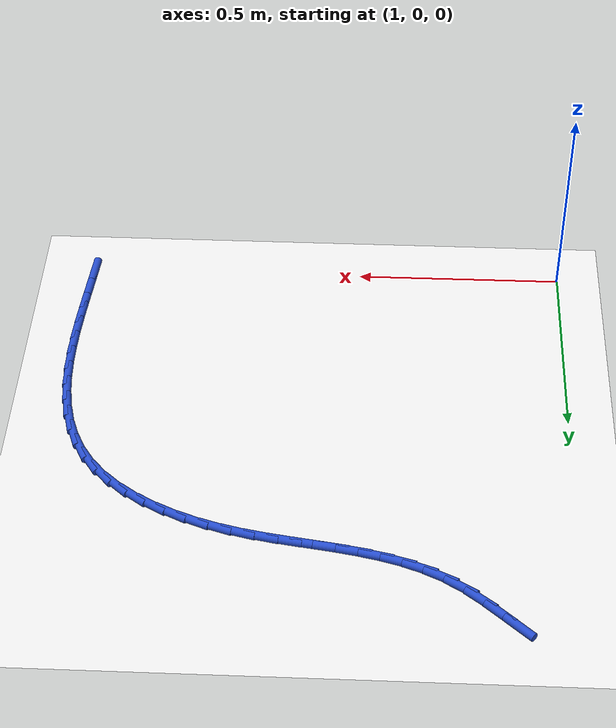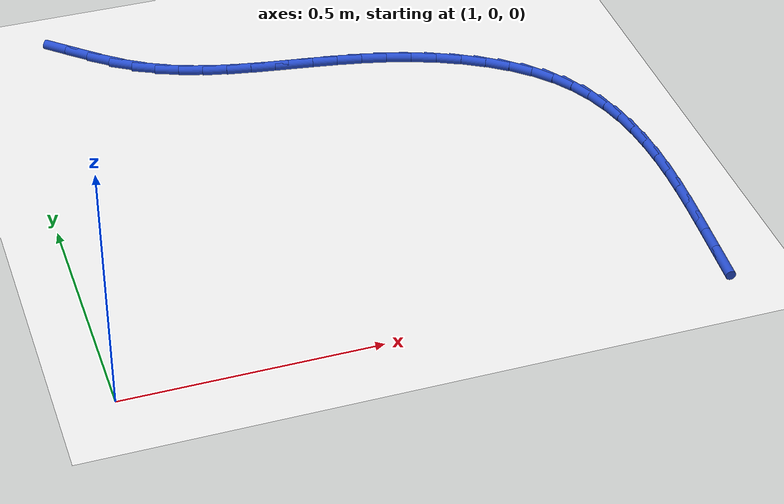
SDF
<sdf version="1.6">
 <world name="default">
  <model name="ground_plane">
   <static>1</static>
   <link name="link">
    <collision name="collision">
     <geometry><plane><normal>0 0 1</normal><size>100 100</size></plane></geometry>
     <surface><friction><ode><mu>100</mu><mu2>50</mu2></ode></friction></surface>
    </collision>
    <visual name="visual">
     <cast_shadows>0</cast_shadows>
     <geometry><plane><normal>0 0 1</normal><size>100 100</size></plane></geometry>
     <material>
      <script><uri>file://media/materials/scripts/gazebo.material</uri><name>Gazebo/WhiteGlow</name></script>
     </material>
    </visual>
   </link>
  </model>
  <model name="line">
   <link name="link_36">
    <pose>1.1379352854605909 1.1097232866844626 0.01 0 1.57 -0.7317335381845154</pose>
    <collision name="collision">
     <geometry><cylinder><radius>0.01</radius><length>0.08</length></cylinder></geometry>
    </collision>
    <visual name="visual">
     <material>
      <script><name>Gazebo/Blue</name><uri>file://media/materials/scripts/gazebo.material</uri></script>
     </material>
     <geometry><cylinder><radius>0.01</radius><length>0.08</length></cylinder></geometry>
    </visual>
   </link>
   <link name="link_37">
    <pose>1.1775645457907205 1.0741344564082316 0.01 0 1.57 -0.7213964662566799</pose>
    <collision name="collision">
     <geometry><cylinder><radius>0.01</radius><length>0.08</length></cylinder></geometry>
    </collision>
    <visual name="visual">
     <material>
      <script><name>Gazebo/Blue</name><uri>file://media/materials/scripts/gazebo.material</uri></script>
     </material>
     <geometry><cylinder><radius>0.01</radius><length>0.08</length></cylinder></geometry>
    </visual>
   </link>
   <link name="link_38">
    <pose>1.2176580591915096 1.0388705424169773 0.01 0 1.57 -0.6620385328162225</pose>
    <collision name="collision">
     <geometry><cylinder><radius>0.01</radius><length>0.08</length></cylinder></geometry>
    </collision>
    <visual name="visual">
     <material>
      <script><name>Gazebo/Blue</name><uri>file://media/materials/scripts/gazebo.material</uri></script>
     </material>
     <geometry><cylinder><radius>0.01</radius><length>0.08</length></cylinder></geometry>
    </visual>
   </link>
   <link name="link_39">
    <pose>1.2589790003060026 1.0066659713873365 0.01 0 1.57 -0.555360376780421</pose>
    <collision name="collision">
     <geometry><cylinder><radius>0.01</radius><length>0.08</length></cylinder></geometry>
    </collision>
    <visual name="visual">
     <material>
      <script><name>Gazebo/Blue</name><uri>file://media/materials/scripts/gazebo.material</uri></script>
     </material>
     <geometry><cylinder><radius>0.01</radius><length>0.08</length></cylinder></geometry>
    </visual>
   </link>
   <link name="link_40">
    <pose>1.302181574808645 0.979858560709502 0.01 0 1.57 -0.44366950882743483</pose>
    <collision name="collision">
     <geometry><cylinder><radius>0.01</radius><length>0.08</length></cylinder></geometry>
    </collision>
    <visual name="visual">
     <material>
      <script><name>Gazebo/Blue</name><uri>file://media/materials/scripts/gazebo.material</uri></script>
     </material>
     <geometry><cylinder><radius>0.01</radius><length>0.08</length></cylinder></geometry>
    </visual>
   </link>
   <link name="link_41">
    <pose>1.3472721725349095 0.9584283025969158 0.01 0 1.57 -0.3476788431000535</pose>
    <collision name="collision">
     <geometry><cylinder><radius>0.01</radius><length>0.08</length></cylinder></geometry>
    </collision>
    <visual name="visual">
     <material>
      <script><name>Gazebo/Blue</name><uri>file://media/materials/scripts/gazebo.material</uri></script>
     </material>
     <geometry><cylinder><radius>0.01</radius><length>0.08</length></cylinder></geometry>
    </visual>
   </link>
   <link name="link_42">
    <pose>1.3940187388656822 0.9414873340726139 0.01 0 1.57 -0.2701817047731345</pose>
    <collision name="collision">
     <geometry><cylinder><radius>0.01</radius><length>0.08</length></cylinder></geometry>
    </collision>
    <visual name="visual">
     <material>
      <script><name>Gazebo/Blue</name><uri>file://media/materials/scripts/gazebo.material</uri></script>
     </material>
     <geometry><cylinder><radius>0.01</radius><length>0.08</length></cylinder></geometry>
    </visual>
   </link>
   <link name="link_43">
    <pose>1.4421888479101332 0.9281464408592379 0.01 0 1.57 -0.21211245688839725</pose>
    <collision name="collision">
     <geometry><cylinder><radius>0.01</radius><length>0.08</length></cylinder></geometry>
    </collision>
    <visual name="visual">
     <material>
      <script><name>Gazebo/Blue</name><uri>file://media/materials/scripts/gazebo.material</uri></script>
     </material>
     <geometry><cylinder><radius>0.01</radius><length>0.08</length></cylinder></geometry>
    </visual>
   </link>
   <link name="link_44">
    <pose>1.491550073777433 0.9175164086794299 0.01 0 1.57 -0.17329194334510015</pose>
    <collision name="collision">
     <geometry><cylinder><radius>0.01</radius><length>0.08</length></cylinder></geometry>
    </collision>
    <visual name="visual">
     <material>
      <script><name>Gazebo/Blue</name><uri>file://media/materials/scripts/gazebo.material</uri></script>
     </material>
     <geometry><cylinder><radius>0.01</radius><length>0.08</length></cylinder></geometry>
    </visual>
   </link>
   <link name="link_45">
    <pose>1.5418699905767514 0.9087080232558314 0.01 0 1.57 -0.15308360173952398</pose>
    <collision name="collision">
     <geometry><cylinder><radius>0.01</radius><length>0.08</length></cylinder></geometry>
    </collision>
    <visual name="visual">
     <material>
      <script><name>Gazebo/Blue</name><uri>file://media/materials/scripts/gazebo.material</uri></script>
     </material>
     <geometry><cylinder><radius>0.01</radius><length>0.08</length></cylinder></geometry>
    </visual>
   </link>
   <link name="link_46">
    <pose>1.5929161724172591 0.9008320703110849 0.01 0 1.57 -0.1508197892313906</pose>
    <collision name="collision">
     <geometry><cylinder><radius>0.01</radius><length>0.08</length></cylinder></geometry>
    </collision>
    <visual name="visual">
     <material>
      <script><name>Gazebo/Blue</name><uri>file://media/materials/scripts/gazebo.material</uri></script>
     </material>
     <geometry><cylinder><radius>0.01</radius><length>0.08</length></cylinder></geometry>
    </visual>
   </link>
   <link name="link_47">
    <pose>1.6444561934081265 0.8929993355678326 0.01 0 1.57 -0.16599675672338854</pose>
    <collision name="collision">
     <geometry><cylinder><radius>0.01</radius><length>0.08</length></cylinder></geometry>
    </collision>
    <visual name="visual">
     <material>
      <script><name>Gazebo/Blue</name><uri>file://media/materials/scripts/gazebo.material</uri></script>
     </material>
     <geometry><cylinder><radius>0.01</radius><length>0.08</length></cylinder></geometry>
    </visual>
   </link>
   <link name="link_48">
    <pose>1.696257627658524 0.8843206047487155 0.01 0 1.57 -0.19828322422897765</pose>
    <collision name="collision">
     <geometry><cylinder><radius>0.01</radius><length>0.08</length></cylinder></geometry>
    </collision>
    <visual name="visual">
     <material>
      <script><name>Gazebo/Blue</name><uri>file://media/materials/scripts/gazebo.material</uri></script>
     </material>
     <geometry><cylinder><radius>0.01</radius><length>0.08</length></cylinder></geometry>
    </visual>
   </link>
   <link name="link_49">
    <pose>1.7480880492776214 0.8739066635763767 0.01 0 1.57 -0.24736332747238596</pose>
    <collision name="collision">
     <geometry><cylinder><radius>0.01</radius><length>0.08</length></cylinder></geometry>
    </collision>
    <visual name="visual">
     <material>
      <script><name>Gazebo/Blue</name><uri>file://media/materials/scripts/gazebo.material</uri></script>
     </material>
     <geometry><cylinder><radius>0.01</radius><length>0.08</length></cylinder></geometry>
    </visual>
   </link>
   <link name="link_50">
    <pose>1.7997145126319094 0.8608691631876783 0.01 0 1.57 -0.30928013860784875</pose>
    <collision name="collision">
     <geometry><cylinder><radius>0.01</radius><length>0.08</length></cylinder></geometry>
    </collision>
    <visual name="visual">
     <material>
      <script><name>Gazebo/Blue</name><uri>file://media/materials/scripts/gazebo.material</uri></script>
     </material>
     <geometry><cylinder><radius>0.01</radius><length>0.08</length></cylinder></geometry>
    </visual>
   </link>
   <link name="link_51">
    <pose>1.850760929131967 0.8445580994895641 0.01 0 1.57 -0.3765459851116786</pose>
    <collision name="collision">
     <geometry><cylinder><radius>0.01</radius><length>0.08</length></cylinder></geometry>
    </collision>
    <visual name="visual">
     <material>
      <script><name>Gazebo/Blue</name><uri>file://media/materials/scripts/gazebo.material</uri></script>
     </material>
     <geometry><cylinder><radius>0.01</radius><length>0.08</length></cylinder></geometry>
    </visual>
   </link>
   <link name="link_52">
    <pose>1.900513899092529 0.8248851190484529 0.01 0 1.57 -0.4500314156725472</pose>
    <collision name="collision">
     <geometry><cylinder><radius>0.01</radius><length>0.08</length></cylinder></geometry>
    </collision>
    <visual name="visual">
     <material>
      <script><name>Gazebo/Blue</name><uri>file://media/materials/scripts/gazebo.material</uri></script>
     </material>
     <geometry><cylinder><radius>0.01</radius><length>0.08</length></cylinder></geometry>
    </visual>
   </link>
   <link name="link_53">
    <pose>1.9482114659408634 0.8018427196337107 0.01 0 1.57 -0.5320418170914659</pose>
    <collision name="collision">
     <geometry><cylinder><radius>0.01</radius><length>0.08</length></cylinder></geometry>
    </collision>
    <visual name="visual">
     <material>
      <script><name>Gazebo/Blue</name><uri>file://media/materials/scripts/gazebo.material</uri></script>
     </material>
     <geometry><cylinder><radius>0.01</radius><length>0.08</length></cylinder></geometry>
    </visual>
   </link>
   <link name="link_54">
    <pose>1.9930916731042376 0.7754233990147016 0.01 0 1.57 -0.6250922533946844</pose>
    <collision name="collision">
     <geometry><cylinder><radius>0.01</radius><length>0.08</length></cylinder></geometry>
    </collision>
    <visual name="visual">
     <material>
      <script><name>Gazebo/Blue</name><uri>file://media/materials/scripts/gazebo.material</uri></script>
     </material>
     <geometry><cylinder><radius>0.01</radius><length>0.08</length></cylinder></geometry>
    </visual>
   </link>
   <link name="link_55">
    <pose>2.0343925640099223 0.7456196549607904 0.01 0 1.57 -0.7317978833888765</pose>
    <collision name="collision">
     <geometry><cylinder><radius>0.01</radius><length>0.08</length></cylinder></geometry>
    </collision>
    <visual name="visual">
     <material>
      <script><name>Gazebo/Blue</name><uri>file://media/materials/scripts/gazebo.material</uri></script>
     </material>
     <geometry><cylinder><radius>0.01</radius><length>0.08</length></cylinder></geometry>
    </visual>
   </link>
   <link name="link_56">
    <pose>2.0713521820851852 0.7124239852413429 0.01 0 1.57 -0.8545079864817634</pose>
    <collision name="collision">
     <geometry><cylinder><radius>0.01</radius><length>0.08</length></cylinder></geometry>
    </collision>
    <visual name="visual">
     <material>
      <script><name>Gazebo/Blue</name><uri>file://media/materials/scripts/gazebo.material</uri></script>
     </material>
     <geometry><cylinder><radius>0.01</radius><length>0.08</length></cylinder></geometry>
    </visual>
   </link>
   <link name="link_57">
    <pose>2.103208943885877 0.6758289885862514 0.01 0 1.57 -0.988533576709642</pose>
    <collision name="collision">
     <geometry><cylinder><radius>0.01</radius><length>0.08</length></cylinder></geometry>
    </collision>
    <visual name="visual">
     <material>
      <script><name>Gazebo/Blue</name><uri>file://media/materials/scripts/gazebo.material</uri></script>
     </material>
     <geometry><cylinder><radius>0.01</radius><length>0.08</length></cylinder></geometry>
    </visual>
   </link>
   <link name="link_58">
    <pose>2.1294941867470123 0.6359065217563946 0.01 0 1.57 -1.1149157498152207</pose>
    <collision name="collision">
     <geometry><cylinder><radius>0.01</radius><length>0.08</length></cylinder></geometry>
    </collision>
    <visual name="visual">
     <material>
      <script><name>Gazebo/Blue</name><uri>file://media/materials/scripts/gazebo.material</uri></script>
     </material>
     <geometry><cylinder><radius>0.01</radius><length>0.08</length></cylinder></geometry>
    </visual>
   </link>
   <link name="link_59">
    <pose>2.1505571238125283 0.5929497410271088 0.01 0 1.57 -1.2272970244718164</pose>
    <collision name="collision">
     <geometry><cylinder><radius>0.01</radius><length>0.08</length></cylinder></geometry>
    </collision>
    <visual name="visual">
     <material>
      <script><name>Gazebo/Blue</name><uri>file://media/materials/scripts/gazebo.material</uri></script>
     </material>
     <geometry><cylinder><radius>0.01</radius><length>0.08</length></cylinder></geometry>
    </visual>
   </link>
   <link name="link_60">
    <pose>2.166888606336506 0.5472901268846483 0.01 0 1.57 -1.3241892328773903</pose>
    <collision name="collision">
     <geometry><cylinder><radius>0.01</radius><length>0.08</length></cylinder></geometry>
    </collision>
    <visual name="visual">
     <material>
      <script><name>Gazebo/Blue</name><uri>file://media/materials/scripts/gazebo.material</uri></script>
     </material>
     <geometry><cylinder><radius>0.01</radius><length>0.08</length></cylinder></geometry>
    </visual>
   </link>
   <link name="link_61">
    <pose>2.178979485573028 0.49925915981526603 0.01 0 1.57 -1.405725625188175</pose>
    <collision name="collision">
     <geometry><cylinder><radius>0.01</radius><length>0.08</length></cylinder></geometry>
    </collision>
    <visual name="visual">
     <material>
      <script><name>Gazebo/Blue</name><uri>file://media/materials/scripts/gazebo.material</uri></script>
     </material>
     <geometry><cylinder><radius>0.01</radius><length>0.08</length></cylinder></geometry>
    </visual>
   </link>
   <link name="link_62">
    <pose>2.187320612776176 0.449188320305216 0.01 0 1.57 -1.4729578765458293</pose>
    <collision name="collision">
     <geometry><cylinder><radius>0.01</radius><length>0.08</length></cylinder></geometry>
    </collision>
    <visual name="visual">
     <material>
      <script><name>Gazebo/Blue</name><uri>file://media/materials/scripts/gazebo.material</uri></script>
     </material>
     <geometry><cylinder><radius>0.01</radius><length>0.08</length></cylinder></geometry>
    </visual>
   </link>
   <link name="link_63">
    <pose>2.192402839200033 0.39740908884075116 0.01 0 1.57 -1.527288344764262</pose>
    <collision name="collision">
     <geometry><cylinder><radius>0.01</radius><length>0.08</length></cylinder></geometry>
    </collision>
    <visual name="visual">
     <material>
      <script><name>Gazebo/Blue</name><uri>file://media/materials/scripts/gazebo.material</uri></script>
     </material>
     <geometry><cylinder><radius>0.01</radius><length>0.08</length></cylinder></geometry>
    </visual>
   </link>
   <link name="link_64">
    <pose>2.19471701609868 0.3442529459081258 0.01 0 1.57 -1.5701140842120487</pose>
    <collision name="collision">
     <geometry><cylinder><radius>0.01</radius><length>0.08</length></cylinder></geometry>
    </collision>
    <visual name="visual">
     <material>
      <script><name>Gazebo/Blue</name><uri>file://media/materials/scripts/gazebo.material</uri></script>
     </material>
     <geometry><cylinder><radius>0.01</radius><length>0.08</length></cylinder></geometry>
    </visual>
   </link>
   <link name="link_65">
    <pose>2.194753994726199 0.290051371993593 0.01 0 1.57 1.538951470054085</pose>
    <collision name="collision">
     <geometry><cylinder><radius>0.01</radius><length>0.08</length></cylinder></geometry>
    </collision>
    <visual name="visual">
     <material>
      <script><name>Gazebo/Blue</name><uri>file://media/materials/scripts/gazebo.material</uri></script>
     </material>
     <geometry><cylinder><radius>0.01</radius><length>0.08</length></cylinder></geometry>
    </visual>
   </link>
   <link name="link_66">
    <pose>2.1930046263366734 0.23513584758340586 0.01 0 1.57 1.5157890428336511</pose>
    <collision name="collision">
     <geometry><cylinder><radius>0.01</radius><length>0.08</length></cylinder></geometry>
    </collision>
    <visual name="visual">
     <material>
      <script><name>Gazebo/Blue</name><uri>file://media/materials/scripts/gazebo.material</uri></script>
     </material>
     <geometry><cylinder><radius>0.01</radius><length>0.08</length></cylinder></geometry>
    </visual>
   </link>
   <link name="link_67">
    <pose>2.189959762184184 0.17983785316381887 0.01 0 1.57 1.5013583817521574</pose>
    <collision name="collision">
     <geometry><cylinder><radius>0.01</radius><length>0.08</length></cylinder></geometry>
    </collision>
    <visual name="visual">
     <material>
      <script><name>Gazebo/Blue</name><uri>file://media/materials/scripts/gazebo.material</uri></script>
     </material>
     <geometry><cylinder><radius>0.01</radius><length>0.08</length></cylinder></geometry>
    </visual>
   </link>
   <link name="link_68">
    <pose>2.1861102535228123 0.12448886922108454 0.01 0 1.57 1.4953376257939774</pose>
    <collision name="collision">
     <geometry><cylinder><radius>0.01</radius><length>0.08</length></cylinder></geometry>
    </collision>
    <visual name="visual">
     <material>
      <script><name>Gazebo/Blue</name><uri>file://media/materials/scripts/gazebo.material</uri></script>
     </material>
     <geometry><cylinder><radius>0.01</radius><length>0.08</length></cylinder></geometry>
    </visual>
   </link>
   <link name="link_69">
    <pose>2.1819469516066423 0.06942037624145748 0.01 0 1.57 1.4963459661400664</pose>
    <collision name="collision">
     <geometry><cylinder><radius>0.01</radius><length>0.08</length></cylinder></geometry>
    </collision>
    <visual name="visual">
     <material>
      <script><name>Gazebo/Blue</name><uri>file://media/materials/scripts/gazebo.material</uri></script>
     </material>
     <geometry><cylinder><radius>0.01</radius><length>0.08</length></cylinder></geometry>
    </visual>
   </link>
   <link name="link_70">
    <pose>2.1778828160899337 0.014932745397209386 0.01 0 1.57 1.49571314780437</pose>
    <collision name="collision">
     <geometry><cylinder><radius>0.01</radius><length>0.08</length></cylinder></geometry>
    </collision>
    <visual name="visual">
     <material>
      <script><name>Gazebo/Blue</name><uri>file://media/materials/scripts/gazebo.material</uri></script>
     </material>
     <geometry><cylinder><radius>0.01</radius><length>0.08</length></cylinder></geometry>
    </visual>
   </link>
  </model>
 </world>
</sdf>
